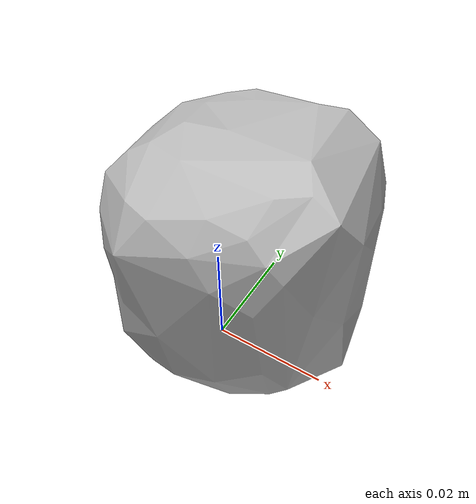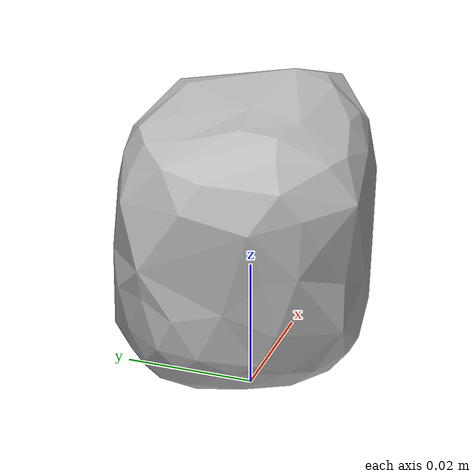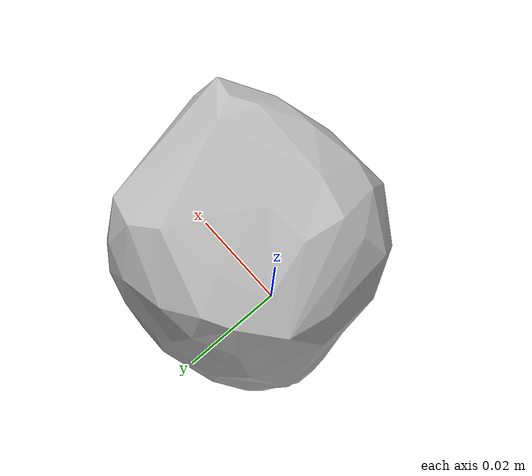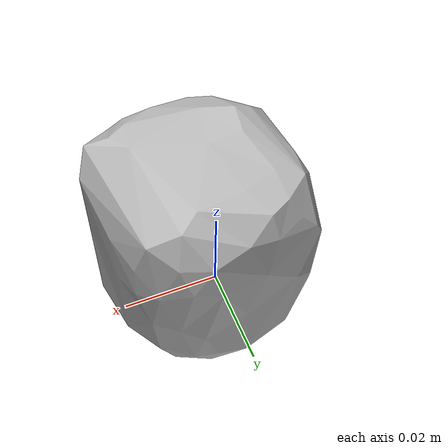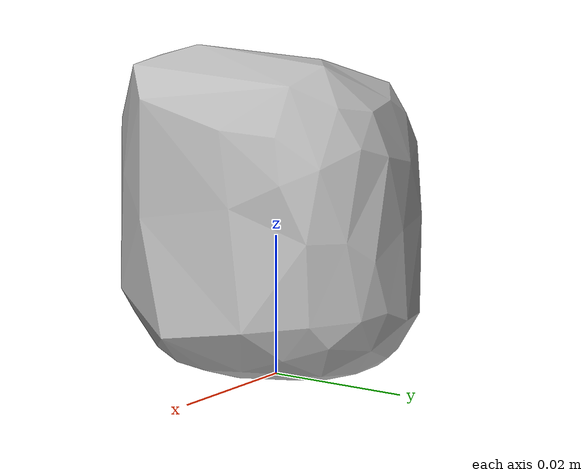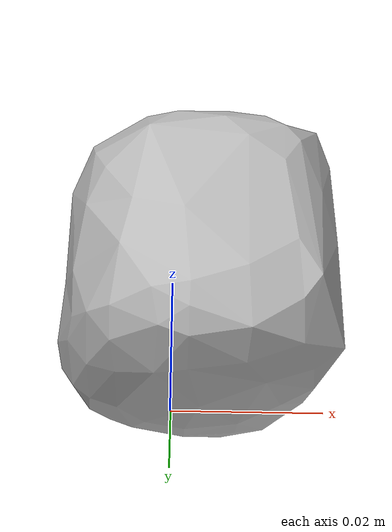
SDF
<?xml version='1.0'?>
<sdf version="1.4">
  <model name="073-k_lego_duplo">
    <static>false</static>
    <link name="link">
      <inertial>
        <pose>0.004051778870426151 0.0024250346381210616 0.02338991645550646 -3.139834034458577 0.2680370822995202 -0.7198760217618901</pose>
        <mass>0.004804963874917553</mass>
        <inertia>
          <ixx>1.056844483736605e-06</ixx>
          <ixy>-9.064905700912943e-23</ixy>
          <ixz>-9.67626641462554e-23</ixz>
          <iyy>1.037244997474436e-06</iyy>
          <iyz>-5.958364563282932e-23</iyz>
          <izz>9.076029912170464e-07</izz>
        </inertia>
      </inertial>
      <collision name="collision">
        <geometry>
          <mesh>
            <!-- Use a downsampled mesh for collisions -->
            <uri>model:///073-k_lego_duplo/073-k_lego_duplo_250_collision.stl</uri>
	        </mesh>
        </geometry>
        <surface>
      </surface>
      </collision>
      <visual name="visual">
        <geometry>
          <mesh>
            <uri>model:///073-k_lego_duplo/textured.obj</uri>
	        </mesh>
        </geometry>
        <material>
          <script>
            <uri>model:///073-k_lego_duplo/073-k_lego_duplo.material</uri>
            <name>073-k_lego_duplo</name>
          </script>
        </material>
      </visual>
    </link>
  </model>
</sdf>
